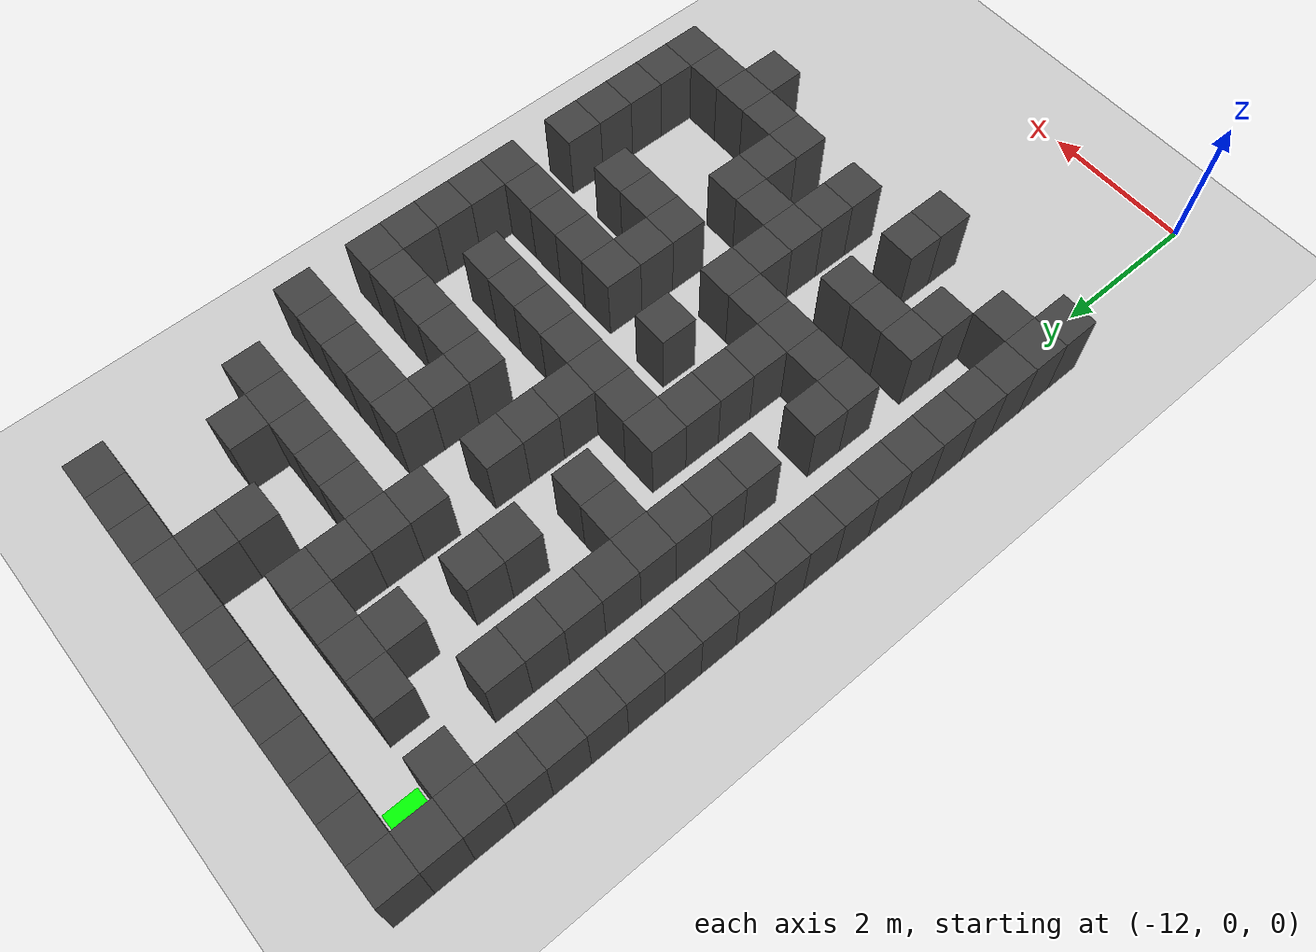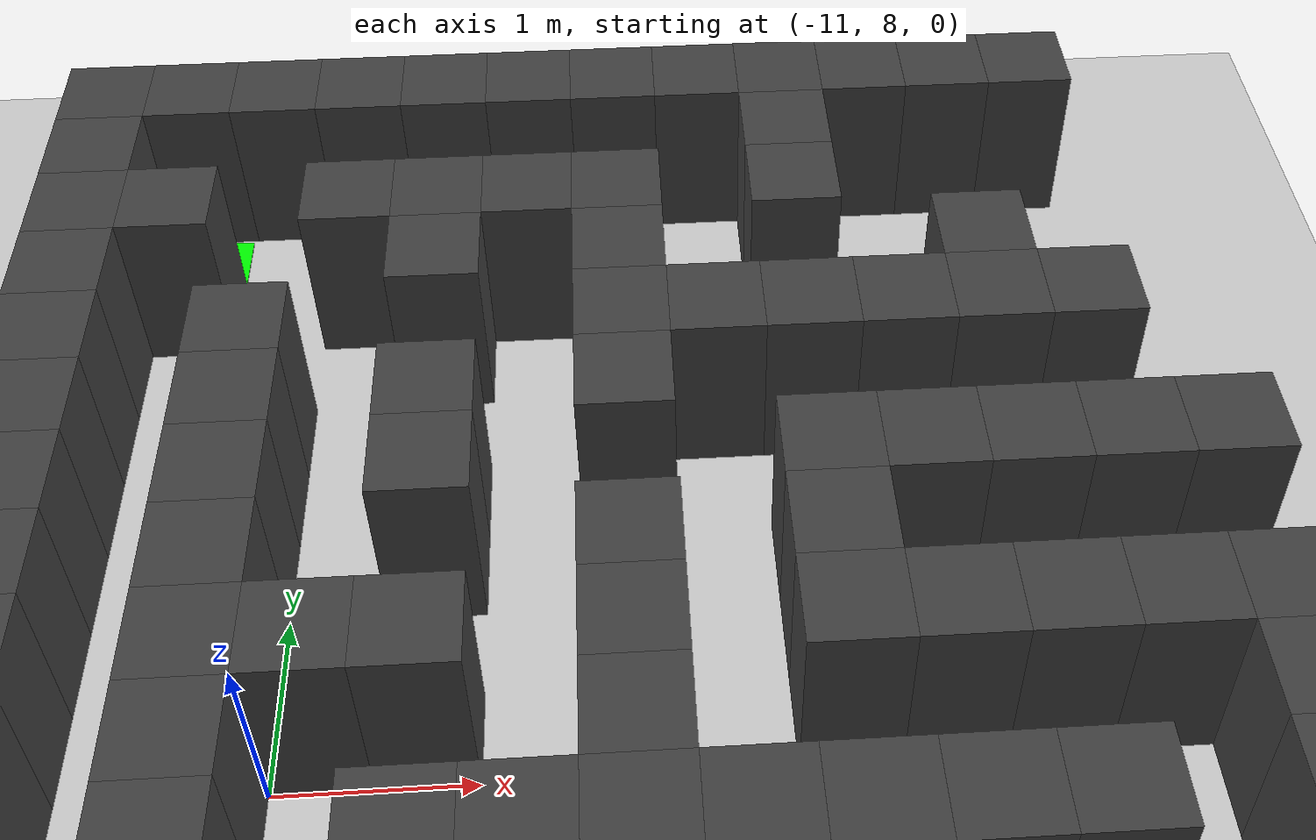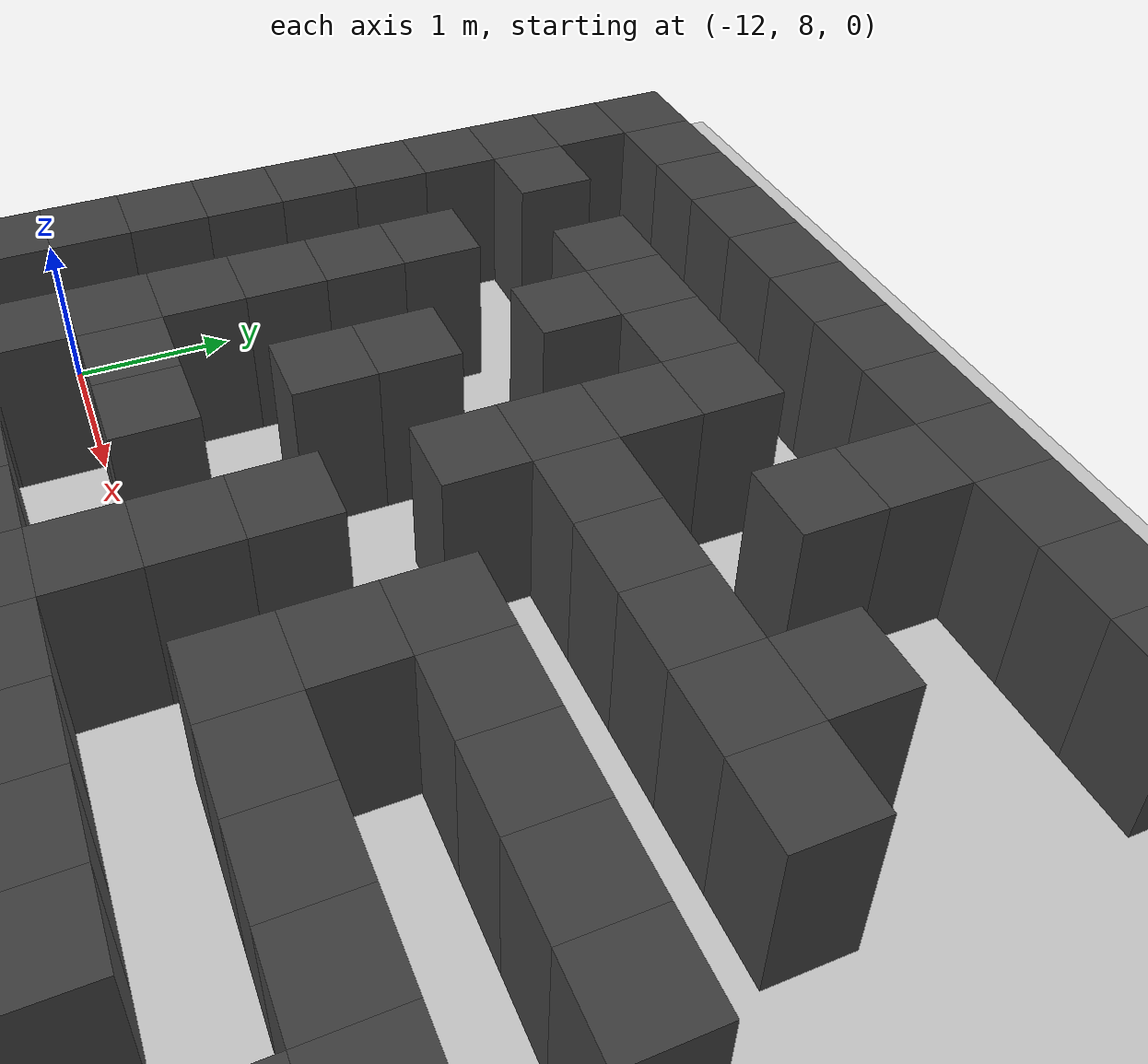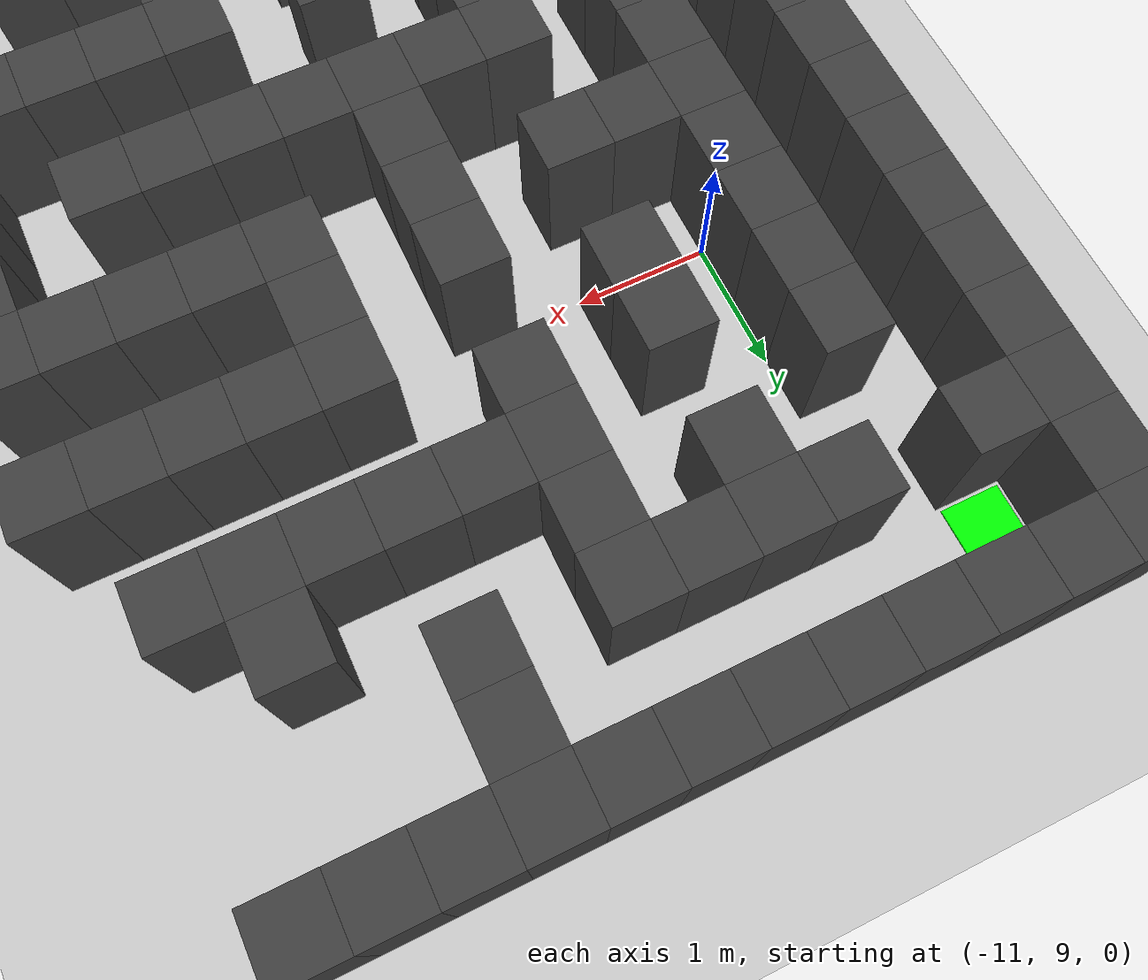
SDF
<sdf version="1.7">
 <world name="map_17663">
  <model name="ground_plane">
   <static>true</static>
   <link name="link">
    <collision name="collision">
     <geometry><plane><normal>0 0 1</normal><size>200 200</size></plane></geometry>
    </collision>
    <visual name="visual">
     <geometry><plane><normal>0 0 1</normal><size>200 200</size></plane></geometry>
     <material><ambient>0.8 0.8 0.8 1</ambient><diffuse>0.8 0.8 0.8 1</diffuse></material>
    </visual>
   </link>
  </model>
  <model name="maze_environment">
   <static>true</static>
   <link name="wall_0">
    <pose>-12.250 12.250 0.500 0 0 0</pose>
    <collision name="col"><geometry><box><size>0.5 0.5 1.0</size></box></geometry></collision>
    <visual name="vis">
     <geometry><box><size>0.5 0.5 1.0</size></box></geometry>
     <material><ambient>0.15 0.15 0.15 1</ambient><diffuse>0.25 0.25 0.25 1</diffuse></material>
    </visual>
   </link>
   <link name="wall_1">
    <pose>-11.750 12.250 0.500 0 0 0</pose>
    <collision name="col"><geometry><box><size>0.5 0.5 1.0</size></box></geometry></collision>
    <visual name="vis">
     <geometry><box><size>0.5 0.5 1.0</size></box></geometry>
     <material><ambient>0.15 0.15 0.15 1</ambient><diffuse>0.25 0.25 0.25 1</diffuse></material>
    </visual>
   </link>
   <link name="wall_2">
    <pose>-11.250 12.250 0.500 0 0 0</pose>
    <collision name="col"><geometry><box><size>0.5 0.5 1.0</size></box></geometry></collision>
    <visual name="vis">
     <geometry><box><size>0.5 0.5 1.0</size></box></geometry>
     <material><ambient>0.15 0.15 0.15 1</ambient><diffuse>0.25 0.25 0.25 1</diffuse></material>
    </visual>
   </link>
   <link name="wall_3">
    <pose>-10.750 12.250 0.500 0 0 0</pose>
    <collision name="col"><geometry><box><size>0.5 0.5 1.0</size></box></geometry></collision>
    <visual name="vis">
     <geometry><box><size>0.5 0.5 1.0</size></box></geometry>
     <material><ambient>0.15 0.15 0.15 1</ambient><diffuse>0.25 0.25 0.25 1</diffuse></material>
    </visual>
   </link>
   <link name="wall_4">
    <pose>-10.250 12.250 0.500 0 0 0</pose>
    <collision name="col"><geometry><box><size>0.5 0.5 1.0</size></box></geometry></collision>
    <visual name="vis">
     <geometry><box><size>0.5 0.5 1.0</size></box></geometry>
     <material><ambient>0.15 0.15 0.15 1</ambient><diffuse>0.25 0.25 0.25 1</diffuse></material>
    </visual>
   </link>
   <link name="wall_5">
    <pose>-9.750 12.250 0.500 0 0 0</pose>
    <collision name="col"><geometry><box><size>0.5 0.5 1.0</size></box></geometry></collision>
    <visual name="vis">
     <geometry><box><size>0.5 0.5 1.0</size></box></geometry>
     <material><ambient>0.15 0.15 0.15 1</ambient><diffuse>0.25 0.25 0.25 1</diffuse></material>
    </visual>
   </link>
   <link name="wall_6">
    <pose>-9.250 12.250 0.500 0 0 0</pose>
    <collision name="col"><geometry><box><size>0.5 0.5 1.0</size></box></geometry></collision>
    <visual name="vis">
     <geometry><box><size>0.5 0.5 1.0</size></box></geometry>
     <material><ambient>0.15 0.15 0.15 1</ambient><diffuse>0.25 0.25 0.25 1</diffuse></material>
    </visual>
   </link>
   <link name="wall_7">
    <pose>-8.750 12.250 0.500 0 0 0</pose>
    <collision name="col"><geometry><box><size>0.5 0.5 1.0</size></box></geometry></collision>
    <visual name="vis">
     <geometry><box><size>0.5 0.5 1.0</size></box></geometry>
     <material><ambient>0.15 0.15 0.15 1</ambient><diffuse>0.25 0.25 0.25 1</diffuse></material>
    </visual>
   </link>
   <link name="wall_8">
    <pose>-8.250 12.250 0.500 0 0 0</pose>
    <collision name="col"><geometry><box><size>0.5 0.5 1.0</size></box></geometry></collision>
    <visual name="vis">
     <geometry><box><size>0.5 0.5 1.0</size></box></geometry>
     <material><ambient>0.15 0.15 0.15 1</ambient><diffuse>0.25 0.25 0.25 1</diffuse></material>
    </visual>
   </link>
   <link name="wall_9">
    <pose>-7.750 12.250 0.500 0 0 0</pose>
    <collision name="col"><geometry><box><size>0.5 0.5 1.0</size></box></geometry></collision>
    <visual name="vis">
     <geometry><box><size>0.5 0.5 1.0</size></box></geometry>
     <material><ambient>0.15 0.15 0.15 1</ambient><diffuse>0.25 0.25 0.25 1</diffuse></material>
    </visual>
   </link>
   <link name="wall_10">
    <pose>-7.250 12.250 0.500 0 0 0</pose>
    <collision name="col"><geometry><box><size>0.5 0.5 1.0</size></box></geometry></collision>
    <visual name="vis">
     <geometry><box><size>0.5 0.5 1.0</size></box></geometry>
     <material><ambient>0.15 0.15 0.15 1</ambient><diffuse>0.25 0.25 0.25 1</diffuse></material>
    </visual>
   </link>
   <link name="wall_11">
    <pose>-6.750 12.250 0.500 0 0 0</pose>
    <collision name="col"><geometry><box><size>0.5 0.5 1.0</size></box></geometry></collision>
    <visual name="vis">
     <geometry><box><size>0.5 0.5 1.0</size></box></geometry>
     <material><ambient>0.15 0.15 0.15 1</ambient><diffuse>0.25 0.25 0.25 1</diffuse></material>
    </visual>
   </link>
   <link name="wall_50">
    <pose>-12.250 11.750 0.500 0 0 0</pose>
    <collision name="col"><geometry><box><size>0.5 0.5 1.0</size></box></geometry></collision>
    <visual name="vis">
     <geometry><box><size>0.5 0.5 1.0</size></box></geometry>
     <material><ambient>0.15 0.15 0.15 1</ambient><diffuse>0.25 0.25 0.25 1</diffuse></material>
    </visual>
   </link>
   <link name="wall_51">
    <pose>-8.250 11.750 0.500 0 0 0</pose>
    <collision name="col"><geometry><box><size>0.5 0.5 1.0</size></box></geometry></collision>
    <visual name="vis">
     <geometry><box><size>0.5 0.5 1.0</size></box></geometry>
     <material><ambient>0.15 0.15 0.15 1</ambient><diffuse>0.25 0.25 0.25 1</diffuse></material>
    </visual>
   </link>
   <link name="wall_59">
    <pose>-12.250 11.250 0.500 0 0 0</pose>
    <collision name="col"><geometry><box><size>0.5 0.5 1.0</size></box></geometry></collision>
    <visual name="vis">
     <geometry><box><size>0.5 0.5 1.0</size></box></geometry>
     <material><ambient>0.15 0.15 0.15 1</ambient><diffuse>0.25 0.25 0.25 1</diffuse></material>
    </visual>
   </link>
   <link name="wall_60">
    <pose>-11.750 11.250 0.500 0 0 0</pose>
    <collision name="col"><geometry><box><size>0.5 0.5 1.0</size></box></geometry></collision>
    <visual name="vis">
     <geometry><box><size>0.5 0.5 1.0</size></box></geometry>
     <material><ambient>0.15 0.15 0.15 1</ambient><diffuse>0.25 0.25 0.25 1</diffuse></material>
    </visual>
   </link>
   <link name="wall_61">
    <pose>-10.750 11.250 0.500 0 0 0</pose>
    <collision name="col"><geometry><box><size>0.5 0.5 1.0</size></box></geometry></collision>
    <visual name="vis">
     <geometry><box><size>0.5 0.5 1.0</size></box></geometry>
     <material><ambient>0.15 0.15 0.15 1</ambient><diffuse>0.25 0.25 0.25 1</diffuse></material>
    </visual>
   </link>
   <link name="wall_62">
    <pose>-10.250 11.250 0.500 0 0 0</pose>
    <collision name="col"><geometry><box><size>0.5 0.5 1.0</size></box></geometry></collision>
    <visual name="vis">
     <geometry><box><size>0.5 0.5 1.0</size></box></geometry>
     <material><ambient>0.15 0.15 0.15 1</ambient><diffuse>0.25 0.25 0.25 1</diffuse></material>
    </visual>
   </link>
   <link name="wall_63">
    <pose>-9.750 11.250 0.500 0 0 0</pose>
    <collision name="col"><geometry><box><size>0.5 0.5 1.0</size></box></geometry></collision>
    <visual name="vis">
     <geometry><box><size>0.5 0.5 1.0</size></box></geometry>
     <material><ambient>0.15 0.15 0.15 1</ambient><diffuse>0.25 0.25 0.25 1</diffuse></material>
    </visual>
   </link>
   <link name="wall_64">
    <pose>-9.250 11.250 0.500 0 0 0</pose>
    <collision name="col"><geometry><box><size>0.5 0.5 1.0</size></box></geometry></collision>
    <visual name="vis">
     <geometry><box><size>0.5 0.5 1.0</size></box></geometry>
     <material><ambient>0.15 0.15 0.15 1</ambient><diffuse>0.25 0.25 0.25 1</diffuse></material>
    </visual>
   </link>
   <link name="wall_65">
    <pose>-8.250 11.250 0.500 0 0 0</pose>
    <collision name="col"><geometry><box><size>0.5 0.5 1.0</size></box></geometry></collision>
    <visual name="vis">
     <geometry><box><size>0.5 0.5 1.0</size></box></geometry>
     <material><ambient>0.15 0.15 0.15 1</ambient><diffuse>0.25 0.25 0.25 1</diffuse></material>
    </visual>
   </link>
   <link name="wall_91">
    <pose>-12.250 10.750 0.500 0 0 0</pose>
    <collision name="col"><geometry><box><size>0.5 0.5 1.0</size></box></geometry></collision>
    <visual name="vis">
     <geometry><box><size>0.5 0.5 1.0</size></box></geometry>
     <material><ambient>0.15 0.15 0.15 1</ambient><diffuse>0.25 0.25 0.25 1</diffuse></material>
    </visual>
   </link>
   <link name="wall_92">
    <pose>-10.250 10.750 0.500 0 0 0</pose>
    <collision name="col"><geometry><box><size>0.5 0.5 1.0</size></box></geometry></collision>
    <visual name="vis">
     <geometry><box><size>0.5 0.5 1.0</size></box></geometry>
     <material><ambient>0.15 0.15 0.15 1</ambient><diffuse>0.25 0.25 0.25 1</diffuse></material>
    </visual>
   </link>
   <link name="wall_93">
    <pose>-9.250 10.750 0.500 0 0 0</pose>
    <collision name="col"><geometry><box><size>0.5 0.5 1.0</size></box></geometry></collision>
    <visual name="vis">
     <geometry><box><size>0.5 0.5 1.0</size></box></geometry>
     <material><ambient>0.15 0.15 0.15 1</ambient><diffuse>0.25 0.25 0.25 1</diffuse></material>
    </visual>
   </link>
   <link name="wall_94">
    <pose>-7.250 10.750 0.500 0 0 0</pose>
    <collision name="col"><geometry><box><size>0.5 0.5 1.0</size></box></geometry></collision>
    <visual name="vis">
     <geometry><box><size>0.5 0.5 1.0</size></box></geometry>
     <material><ambient>0.15 0.15 0.15 1</ambient><diffuse>0.25 0.25 0.25 1</diffuse></material>
    </visual>
   </link>
   <link name="wall_105">
    <pose>-12.250 10.250 0.500 0 0 0</pose>
    <collision name="col"><geometry><box><size>0.5 0.5 1.0</size></box></geometry></collision>
    <visual name="vis">
     <geometry><box><size>0.5 0.5 1.0</size></box></geometry>
     <material><ambient>0.15 0.15 0.15 1</ambient><diffuse>0.25 0.25 0.25 1</diffuse></material>
    </visual>
   </link>
   <link name="wall_106">
    <pose>-11.250 10.250 0.500 0 0 0</pose>
    <collision name="col"><geometry><box><size>0.5 0.5 1.0</size></box></geometry></collision>
    <visual name="vis">
     <geometry><box><size>0.5 0.5 1.0</size></box></geometry>
     <material><ambient>0.15 0.15 0.15 1</ambient><diffuse>0.25 0.25 0.25 1</diffuse></material>
    </visual>
   </link>
   <link name="wall_107">
    <pose>-9.250 10.250 0.500 0 0 0</pose>
    <collision name="col"><geometry><box><size>0.5 0.5 1.0</size></box></geometry></collision>
    <visual name="vis">
     <geometry><box><size>0.5 0.5 1.0</size></box></geometry>
     <material><ambient>0.15 0.15 0.15 1</ambient><diffuse>0.25 0.25 0.25 1</diffuse></material>
    </visual>
   </link>
   <link name="wall_108">
    <pose>-8.750 10.250 0.500 0 0 0</pose>
    <collision name="col"><geometry><box><size>0.5 0.5 1.0</size></box></geometry></collision>
    <visual name="vis">
     <geometry><box><size>0.5 0.5 1.0</size></box></geometry>
     <material><ambient>0.15 0.15 0.15 1</ambient><diffuse>0.25 0.25 0.25 1</diffuse></material>
    </visual>
   </link>
   <link name="wall_109">
    <pose>-8.250 10.250 0.500 0 0 0</pose>
    <collision name="col"><geometry><box><size>0.5 0.5 1.0</size></box></geometry></collision>
    <visual name="vis">
     <geometry><box><size>0.5 0.5 1.0</size></box></geometry>
     <material><ambient>0.15 0.15 0.15 1</ambient><diffuse>0.25 0.25 0.25 1</diffuse></material>
    </visual>
   </link>
   <link name="wall_110">
    <pose>-7.750 10.250 0.500 0 0 0</pose>
    <collision name="col"><geometry><box><size>0.5 0.5 1.0</size></box></geometry></collision>
    <visual name="vis">
     <geometry><box><size>0.5 0.5 1.0</size></box></geometry>
     <material><ambient>0.15 0.15 0.15 1</ambient><diffuse>0.25 0.25 0.25 1</diffuse></material>
    </visual>
   </link>
   <link name="wall_111">
    <pose>-7.250 10.250 0.500 0 0 0</pose>
    <collision name="col"><geometry><box><size>0.5 0.5 1.0</size></box></geometry></collision>
    <visual name="vis">
     <geometry><box><size>0.5 0.5 1.0</size></box></geometry>
     <material><ambient>0.15 0.15 0.15 1</ambient><diffuse>0.25 0.25 0.25 1</diffuse></material>
    </visual>
   </link>
   <link name="wall_112">
    <pose>-6.750 10.250 0.500 0 0 0</pose>
    <collision name="col"><geometry><box><size>0.5 0.5 1.0</size></box></geometry></collision>
    <visual name="vis">
     <geometry><box><size>0.5 0.5 1.0</size></box></geometry>
     <material><ambient>0.15 0.15 0.15 1</ambient><diffuse>0.25 0.25 0.25 1</diffuse></material>
    </visual>
   </link>
   <link name="wall_139">
    <pose>-12.250 9.750 0.500 0 0 0</pose>
    <collision name="col"><geometry><box><size>0.5 0.5 1.0</size></box></geometry></collision>
    <visual name="vis">
     <geometry><box><size>0.5 0.5 1.0</size></box></geometry>
     <material><ambient>0.15 0.15 0.15 1</ambient><diffuse>0.25 0.25 0.25 1</diffuse></material>
    </visual>
   </link>
   <link name="wall_140">
    <pose>-11.250 9.750 0.500 0 0 0</pose>
    <collision name="col"><geometry><box><size>0.5 0.5 1.0</size></box></geometry></collision>
    <visual name="vis">
     <geometry><box><size>0.5 0.5 1.0</size></box></geometry>
     <material><ambient>0.15 0.15 0.15 1</ambient><diffuse>0.25 0.25 0.25 1</diffuse></material>
    </visual>
   </link>
   <link name="wall_141">
    <pose>-10.250 9.750 0.500 0 0 0</pose>
    <collision name="col"><geometry><box><size>0.5 0.5 1.0</size></box></geometry></collision>
    <visual name="vis">
     <geometry><box><size>0.5 0.5 1.0</size></box></geometry>
     <material><ambient>0.15 0.15 0.15 1</ambient><diffuse>0.25 0.25 0.25 1</diffuse></material>
    </visual>
   </link>
   <link name="wall_142">
    <pose>-9.250 9.750 0.500 0 0 0</pose>
    <collision name="col"><geometry><box><size>0.5 0.5 1.0</size></box></geometry></collision>
    <visual name="vis">
     <geometry><box><size>0.5 0.5 1.0</size></box></geometry>
     <material><ambient>0.15 0.15 0.15 1</ambient><diffuse>0.25 0.25 0.25 1</diffuse></material>
    </visual>
   </link>
   <link name="wall_155">
    <pose>-12.250 9.250 0.500 0 0 0</pose>
    <collision name="col"><geometry><box><size>0.5 0.5 1.0</size></box></geometry></collision>
    <visual name="vis">
     <geometry><box><size>0.5 0.5 1.0</size></box></geometry>
     <material><ambient>0.15 0.15 0.15 1</ambient><diffuse>0.25 0.25 0.25 1</diffuse></material>
    </visual>
   </link>
   <link name="wall_156">
    <pose>-11.250 9.250 0.500 0 0 0</pose>
    <collision name="col"><geometry><box><size>0.5 0.5 1.0</size></box></geometry></collision>
    <visual name="vis">
     <geometry><box><size>0.5 0.5 1.0</size></box></geometry>
     <material><ambient>0.15 0.15 0.15 1</ambient><diffuse>0.25 0.25 0.25 1</diffuse></material>
    </visual>
   </link>
   <link name="wall_157">
    <pose>-10.250 9.250 0.500 0 0 0</pose>
    <collision name="col"><geometry><box><size>0.5 0.5 1.0</size></box></geometry></collision>
    <visual name="vis">
     <geometry><box><size>0.5 0.5 1.0</size></box></geometry>
     <material><ambient>0.15 0.15 0.15 1</ambient><diffuse>0.25 0.25 0.25 1</diffuse></material>
    </visual>
   </link>
   <link name="wall_158">
    <pose>-8.250 9.250 0.500 0 0 0</pose>
    <collision name="col"><geometry><box><size>0.5 0.5 1.0</size></box></geometry></collision>
    <visual name="vis">
     <geometry><box><size>0.5 0.5 1.0</size></box></geometry>
     <material><ambient>0.15 0.15 0.15 1</ambient><diffuse>0.25 0.25 0.25 1</diffuse></material>
    </visual>
   </link>
   <link name="wall_159">
    <pose>-7.750 9.250 0.500 0 0 0</pose>
    <collision name="col"><geometry><box><size>0.5 0.5 1.0</size></box></geometry></collision>
    <visual name="vis">
     <geometry><box><size>0.5 0.5 1.0</size></box></geometry>
     <material><ambient>0.15 0.15 0.15 1</ambient><diffuse>0.25 0.25 0.25 1</diffuse></material>
    </visual>
   </link>
   <link name="wall_160">
    <pose>-7.250 9.250 0.500 0 0 0</pose>
    <collision name="col"><geometry><box><size>0.5 0.5 1.0</size></box></geometry></collision>
    <visual name="vis">
     <geometry><box><size>0.5 0.5 1.0</size></box></geometry>
     <material><ambient>0.15 0.15 0.15 1</ambient><diffuse>0.25 0.25 0.25 1</diffuse></material>
    </visual>
   </link>
   <link name="wall_161">
    <pose>-6.750 9.250 0.500 0 0 0</pose>
    <collision name="col"><geometry><box><size>0.5 0.5 1.0</size></box></geometry></collision>
    <visual name="vis">
     <geometry><box><size>0.5 0.5 1.0</size></box></geometry>
     <material><ambient>0.15 0.15 0.15 1</ambient><diffuse>0.25 0.25 0.25 1</diffuse></material>
    </visual>
   </link>
   <link name="wall_162">
    <pose>-6.250 9.250 0.500 0 0 0</pose>
    <collision name="col"><geometry><box><size>0.5 0.5 1.0</size></box></geometry></collision>
    <visual name="vis">
     <geometry><box><size>0.5 0.5 1.0</size></box></geometry>
     <material><ambient>0.15 0.15 0.15 1</ambient><diffuse>0.25 0.25 0.25 1</diffuse></material>
    </visual>
   </link>
   <link name="wall_188">
    <pose>-12.250 8.750 0.500 0 0 0</pose>
    <collision name="col"><geometry><box><size>0.5 0.5 1.0</size></box></geometry></collision>
    <visual name="vis">
     <geometry><box><size>0.5 0.5 1.0</size></box></geometry>
     <material><ambient>0.15 0.15 0.15 1</ambient><diffuse>0.25 0.25 0.25 1</diffuse></material>
    </visual>
   </link>
   <link name="wall_189">
    <pose>-11.250 8.750 0.500 0 0 0</pose>
    <collision name="col"><geometry><box><size>0.5 0.5 1.0</size></box></geometry></collision>
    <visual name="vis">
     <geometry><box><size>0.5 0.5 1.0</size></box></geometry>
     <material><ambient>0.15 0.15 0.15 1</ambient><diffuse>0.25 0.25 0.25 1</diffuse></material>
    </visual>
   </link>
   <link name="wall_190">
    <pose>-9.250 8.750 0.500 0 0 0</pose>
    <collision name="col"><geometry><box><size>0.5 0.5 1.0</size></box></geometry></collision>
    <visual name="vis">
     <geometry><box><size>0.5 0.5 1.0</size></box></geometry>
     <material><ambient>0.15 0.15 0.15 1</ambient><diffuse>0.25 0.25 0.25 1</diffuse></material>
    </visual>
   </link>
   <link name="wall_191">
    <pose>-8.250 8.750 0.500 0 0 0</pose>
    <collision name="col"><geometry><box><size>0.5 0.5 1.0</size></box></geometry></collision>
    <visual name="vis">
     <geometry><box><size>0.5 0.5 1.0</size></box></geometry>
     <material><ambient>0.15 0.15 0.15 1</ambient><diffuse>0.25 0.25 0.25 1</diffuse></material>
    </visual>
   </link>
   <link name="wall_203">
    <pose>-12.250 8.250 0.500 0 0 0</pose>
    <collision name="col"><geometry><box><size>0.5 0.5 1.0</size></box></geometry></collision>
    <visual name="vis">
     <geometry><box><size>0.5 0.5 1.0</size></box></geometry>
     <material><ambient>0.15 0.15 0.15 1</ambient><diffuse>0.25 0.25 0.25 1</diffuse></material>
    </visual>
   </link>
   <link name="wall_204">
    <pose>-11.250 8.250 0.500 0 0 0</pose>
    <collision name="col"><geometry><box><size>0.5 0.5 1.0</size></box></geometry></collision>
    <visual name="vis">
     <geometry><box><size>0.5 0.5 1.0</size></box></geometry>
     <material><ambient>0.15 0.15 0.15 1</ambient><diffuse>0.25 0.25 0.25 1</diffuse></material>
    </visual>
   </link>
   <link name="wall_205">
    <pose>-10.750 8.250 0.500 0 0 0</pose>
    <collision name="col"><geometry><box><size>0.5 0.5 1.0</size></box></geometry></collision>
    <visual name="vis">
     <geometry><box><size>0.5 0.5 1.0</size></box></geometry>
     <material><ambient>0.15 0.15 0.15 1</ambient><diffuse>0.25 0.25 0.25 1</diffuse></material>
    </visual>
   </link>
   <link name="wall_206">
    <pose>-10.250 8.250 0.500 0 0 0</pose>
    <collision name="col"><geometry><box><size>0.5 0.5 1.0</size></box></geometry></collision>
    <visual name="vis">
     <geometry><box><size>0.5 0.5 1.0</size></box></geometry>
     <material><ambient>0.15 0.15 0.15 1</ambient><diffuse>0.25 0.25 0.25 1</diffuse></material>
    </visual>
   </link>
   <link name="wall_207">
    <pose>-9.250 8.250 0.500 0 0 0</pose>
    <collision name="col"><geometry><box><size>0.5 0.5 1.0</size></box></geometry></collision>
    <visual name="vis">
     <geometry><box><size>0.5 0.5 1.0</size></box></geometry>
     <material><ambient>0.15 0.15 0.15 1</ambient><diffuse>0.25 0.25 0.25 1</diffuse></material>
    </visual>
   </link>
   <link name="wall_208">
    <pose>-8.250 8.250 0.500 0 0 0</pose>
    <collision name="col"><geometry><box><size>0.5 0.5 1.0</size></box></geometry></collision>
    <visual name="vis">
     <geometry><box><size>0.5 0.5 1.0</size></box></geometry>
     <material><ambient>0.15 0.15 0.15 1</ambient><diffuse>0.25 0.25 0.25 1</diffuse></material>
    </visual>
   </link>
   <link name="wall_209">
    <pose>-7.750 8.250 0.500 0 0 0</pose>
    <collision name="col"><geometry><box><size>0.5 0.5 1.0</size></box></geometry></collision>
    <visual name="vis">
     <geometry><box><size>0.5 0.5 1.0</size></box></geometry>
     <material><ambient>0.15 0.15 0.15 1</ambient><diffuse>0.25 0.25 0.25 1</diffuse></material>
    </visual>
   </link>
   <link name="wall_210">
    <pose>-7.250 8.250 0.500 0 0 0</pose>
    <collision name="col"><geometry><box><size>0.5 0.5 1.0</size></box></geometry></collision>
    <visual name="vis">
     <geometry><box><size>0.5 0.5 1.0</size></box></geometry>
     <material><ambient>0.15 0.15 0.15 1</ambient><diffuse>0.25 0.25 0.25 1</diffuse></material>
    </visual>
   </link>
   <link name="wall_211">
    <pose>-6.750 8.250 0.500 0 0 0</pose>
    <collision name="col"><geometry><box><size>0.5 0.5 1.0</size></box></geometry></collision>
    <visual name="vis">
     <geometry><box><size>0.5 0.5 1.0</size></box></geometry>
     <material><ambient>0.15 0.15 0.15 1</ambient><diffuse>0.25 0.25 0.25 1</diffuse></material>
    </visual>
   </link>
   <link name="wall_212">
    <pose>-6.250 8.250 0.500 0 0 0</pose>
    <collision name="col"><geometry><box><size>0.5 0.5 1.0</size></box></geometry></collision>
    <visual name="vis">
     <geometry><box><size>0.5 0.5 1.0</size></box></geometry>
     <material><ambient>0.15 0.15 0.15 1</ambient><diffuse>0.25 0.25 0.25 1</diffuse></material>
    </visual>
   </link>
   <link name="wall_241">
    <pose>-12.250 7.750 0.500 0 0 0</pose>
    <collision name="col"><geometry><box><size>0.5 0.5 1.0</size></box></geometry></collision>
    <visual name="vis">
     <geometry><box><size>0.5 0.5 1.0</size></box></geometry>
     <material><ambient>0.15 0.15 0.15 1</ambient><diffuse>0.25 0.25 0.25 1</diffuse></material>
    </visual>
   </link>
   <link name="wall_242">
    <pose>-11.250 7.750 0.500 0 0 0</pose>
    <collision name="col"><geometry><box><size>0.5 0.5 1.0</size></box></geometry></collision>
    <visual name="vis">
     <geometry><box><size>0.5 0.5 1.0</size></box></geometry>
     <material><ambient>0.15 0.15 0.15 1</ambient><diffuse>0.25 0.25 0.25 1</diffuse></material>
    </visual>
   </link>
   <link name="wall_243">
    <pose>-9.250 7.750 0.500 0 0 0</pose>
    <collision name="col"><geometry><box><size>0.5 0.5 1.0</size></box></geometry></collision>
    <visual name="vis">
     <geometry><box><size>0.5 0.5 1.0</size></box></geometry>
     <material><ambient>0.15 0.15 0.15 1</ambient><diffuse>0.25 0.25 0.25 1</diffuse></material>
    </visual>
   </link>
   <link name="wall_244">
    <pose>-6.250 7.750 0.500 0 0 0</pose>
    <collision name="col"><geometry><box><size>0.5 0.5 1.0</size></box></geometry></collision>
    <visual name="vis">
     <geometry><box><size>0.5 0.5 1.0</size></box></geometry>
     <material><ambient>0.15 0.15 0.15 1</ambient><diffuse>0.25 0.25 0.25 1</diffuse></material>
    </visual>
   </link>
   <link name="wall_254">
    <pose>-12.250 7.250 0.500 0 0 0</pose>
    <collision name="col"><geometry><box><size>0.5 0.5 1.0</size></box></geometry></collision>
    <visual name="vis">
     <geometry><box><size>0.5 0.5 1.0</size></box></geometry>
     <material><ambient>0.15 0.15 0.15 1</ambient><diffuse>0.25 0.25 0.25 1</diffuse></material>
    </visual>
   </link>
   <link name="wall_255">
    <pose>-11.250 7.250 0.500 0 0 0</pose>
    <collision name="col"><geometry><box><size>0.5 0.5 1.0</size></box></geometry></collision>
    <visual name="vis">
     <geometry><box><size>0.5 0.5 1.0</size></box></geometry>
     <material><ambient>0.15 0.15 0.15 1</ambient><diffuse>0.25 0.25 0.25 1</diffuse></material>
    </visual>
   </link>
   <link name="wall_256">
    <pose>-10.250 7.250 0.500 0 0 0</pose>
    <collision name="col"><geometry><box><size>0.5 0.5 1.0</size></box></geometry></collision>
    <visual name="vis">
     <geometry><box><size>0.5 0.5 1.0</size></box></geometry>
     <material><ambient>0.15 0.15 0.15 1</ambient><diffuse>0.25 0.25 0.25 1</diffuse></material>
    </visual>
   </link>
   <link name="wall_257">
    <pose>-9.750 7.250 0.500 0 0 0</pose>
    <collision name="col"><geometry><box><size>0.5 0.5 1.0</size></box></geometry></collision>
    <visual name="vis">
     <geometry><box><size>0.5 0.5 1.0</size></box></geometry>
     <material><ambient>0.15 0.15 0.15 1</ambient><diffuse>0.25 0.25 0.25 1</diffuse></material>
    </visual>
   </link>
   <link name="wall_258">
    <pose>-9.250 7.250 0.500 0 0 0</pose>
    <collision name="col"><geometry><box><size>0.5 0.5 1.0</size></box></geometry></collision>
    <visual name="vis">
     <geometry><box><size>0.5 0.5 1.0</size></box></geometry>
     <material><ambient>0.15 0.15 0.15 1</ambient><diffuse>0.25 0.25 0.25 1</diffuse></material>
    </visual>
   </link>
   <link name="wall_259">
    <pose>-8.750 7.250 0.500 0 0 0</pose>
    <collision name="col"><geometry><box><size>0.5 0.5 1.0</size></box></geometry></collision>
    <visual name="vis">
     <geometry><box><size>0.5 0.5 1.0</size></box></geometry>
     <material><ambient>0.15 0.15 0.15 1</ambient><diffuse>0.25 0.25 0.25 1</diffuse></material>
    </visual>
   </link>
   <link name="wall_260">
    <pose>-8.250 7.250 0.500 0 0 0</pose>
    <collision name="col"><geometry><box><size>0.5 0.5 1.0</size></box></geometry></collision>
    <visual name="vis">
     <geometry><box><size>0.5 0.5 1.0</size></box></geometry>
     <material><ambient>0.15 0.15 0.15 1</ambient><diffuse>0.25 0.25 0.25 1</diffuse></material>
    </visual>
   </link>
   <link name="wall_261">
    <pose>-7.750 7.250 0.500 0 0 0</pose>
    <collision name="col"><geometry><box><size>0.5 0.5 1.0</size></box></geometry></collision>
    <visual name="vis">
     <geometry><box><size>0.5 0.5 1.0</size></box></geometry>
     <material><ambient>0.15 0.15 0.15 1</ambient><diffuse>0.25 0.25 0.25 1</diffuse></material>
    </visual>
   </link>
   <link name="wall_262">
    <pose>-7.250 7.250 0.500 0 0 0</pose>
    <collision name="col"><geometry><box><size>0.5 0.5 1.0</size></box></geometry></collision>
    <visual name="vis">
     <geometry><box><size>0.5 0.5 1.0</size></box></geometry>
     <material><ambient>0.15 0.15 0.15 1</ambient><diffuse>0.25 0.25 0.25 1</diffuse></material>
    </visual>
   </link>
   <link name="wall_263">
    <pose>-6.250 7.250 0.500 0 0 0</pose>
    <collision name="col"><geometry><box><size>0.5 0.5 1.0</size></box></geometry></collision>
    <visual name="vis">
     <geometry><box><size>0.5 0.5 1.0</size></box></geometry>
     <material><ambient>0.15 0.15 0.15 1</ambient><diffuse>0.25 0.25 0.25 1</diffuse></material>
    </visual>
   </link>
   <link name="wall_288">
    <pose>-12.250 6.750 0.500 0 0 0</pose>
    <collision name="col"><geometry><box><size>0.5 0.5 1.0</size></box></geometry></collision>
    <visual name="vis">
     <geometry><box><size>0.5 0.5 1.0</size></box></geometry>
     <material><ambient>0.15 0.15 0.15 1</ambient><diffuse>0.25 0.25 0.25 1</diffuse></material>
    </visual>
   </link>
   <link name="wall_289">
    <pose>-11.250 6.750 0.500 0 0 0</pose>
    <collision name="col"><geometry><box><size>0.5 0.5 1.0</size></box></geometry></collision>
    <visual name="vis">
     <geometry><box><size>0.5 0.5 1.0</size></box></geometry>
     <material><ambient>0.15 0.15 0.15 1</ambient><diffuse>0.25 0.25 0.25 1</diffuse></material>
    </visual>
   </link>
   <link name="wall_290">
    <pose>-10.250 6.750 0.500 0 0 0</pose>
    <collision name="col"><geometry><box><size>0.5 0.5 1.0</size></box></geometry></collision>
    <visual name="vis">
     <geometry><box><size>0.5 0.5 1.0</size></box></geometry>
     <material><ambient>0.15 0.15 0.15 1</ambient><diffuse>0.25 0.25 0.25 1</diffuse></material>
    </visual>
   </link>
   <link name="wall_291">
    <pose>-6.250 6.750 0.500 0 0 0</pose>
    <collision name="col"><geometry><box><size>0.5 0.5 1.0</size></box></geometry></collision>
    <visual name="vis">
     <geometry><box><size>0.5 0.5 1.0</size></box></geometry>
     <material><ambient>0.15 0.15 0.15 1</ambient><diffuse>0.25 0.25 0.25 1</diffuse></material>
    </visual>
   </link>
   <link name="wall_301">
    <pose>-12.250 6.250 0.500 0 0 0</pose>
    <collision name="col"><geometry><box><size>0.5 0.5 1.0</size></box></geometry></collision>
    <visual name="vis">
     <geometry><box><size>0.5 0.5 1.0</size></box></geometry>
     <material><ambient>0.15 0.15 0.15 1</ambient><diffuse>0.25 0.25 0.25 1</diffuse></material>
    </visual>
   </link>
   <link name="wall_302">
    <pose>-10.250 6.250 0.500 0 0 0</pose>
    <collision name="col"><geometry><box><size>0.5 0.5 1.0</size></box></geometry></collision>
    <visual name="vis">
     <geometry><box><size>0.5 0.5 1.0</size></box></geometry>
     <material><ambient>0.15 0.15 0.15 1</ambient><diffuse>0.25 0.25 0.25 1</diffuse></material>
    </visual>
   </link>
   <link name="wall_303">
    <pose>-9.250 6.250 0.500 0 0 0</pose>
    <collision name="col"><geometry><box><size>0.5 0.5 1.0</size></box></geometry></collision>
    <visual name="vis">
     <geometry><box><size>0.5 0.5 1.0</size></box></geometry>
     <material><ambient>0.15 0.15 0.15 1</ambient><diffuse>0.25 0.25 0.25 1</diffuse></material>
    </visual>
   </link>
   <link name="wall_304">
    <pose>-8.250 6.250 0.500 0 0 0</pose>
    <collision name="col"><geometry><box><size>0.5 0.5 1.0</size></box></geometry></collision>
    <visual name="vis">
     <geometry><box><size>0.5 0.5 1.0</size></box></geometry>
     <material><ambient>0.15 0.15 0.15 1</ambient><diffuse>0.25 0.25 0.25 1</diffuse></material>
    </visual>
   </link>
   <link name="wall_305">
    <pose>-7.750 6.250 0.500 0 0 0</pose>
    <collision name="col"><geometry><box><size>0.5 0.5 1.0</size></box></geometry></collision>
    <visual name="vis">
     <geometry><box><size>0.5 0.5 1.0</size></box></geometry>
     <material><ambient>0.15 0.15 0.15 1</ambient><diffuse>0.25 0.25 0.25 1</diffuse></material>
    </visual>
   </link>
   <link name="wall_306">
    <pose>-7.250 6.250 0.500 0 0 0</pose>
    <collision name="col"><geometry><box><size>0.5 0.5 1.0</size></box></geometry></collision>
    <visual name="vis">
     <geometry><box><size>0.5 0.5 1.0</size></box></geometry>
     <material><ambient>0.15 0.15 0.15 1</ambient><diffuse>0.25 0.25 0.25 1</diffuse></material>
    </visual>
   </link>
   <link name="wall_307">
    <pose>-6.750 6.250 0.500 0 0 0</pose>
    <collision name="col"><geometry><box><size>0.5 0.5 1.0</size></box></geometry></collision>
    <visual name="vis">
     <geometry><box><size>0.5 0.5 1.0</size></box></geometry>
     <material><ambient>0.15 0.15 0.15 1</ambient><diffuse>0.25 0.25 0.25 1</diffuse></material>
    </visual>
   </link>
   <link name="wall_308">
    <pose>-6.250 6.250 0.500 0 0 0</pose>
    <collision name="col"><geometry><box><size>0.5 0.5 1.0</size></box></geometry></collision>
    <visual name="vis">
     <geometry><box><size>0.5 0.5 1.0</size></box></geometry>
     <material><ambient>0.15 0.15 0.15 1</ambient><diffuse>0.25 0.25 0.25 1</diffuse></material>
    </visual>
   </link>
   <link name="wall_331">
    <pose>-12.250 5.750 0.500 0 0 0</pose>
    <collision name="col"><geometry><box><size>0.5 0.5 1.0</size></box></geometry></collision>
    <visual name="vis">
     <geometry><box><size>0.5 0.5 1.0</size></box></geometry>
     <material><ambient>0.15 0.15 0.15 1</ambient><diffuse>0.25 0.25 0.25 1</diffuse></material>
    </visual>
   </link>
   <link name="wall_332">
    <pose>-11.250 5.750 0.500 0 0 0</pose>
    <collision name="col"><geometry><box><size>0.5 0.5 1.0</size></box></geometry></collision>
    <visual name="vis">
     <geometry><box><size>0.5 0.5 1.0</size></box></geometry>
     <material><ambient>0.15 0.15 0.15 1</ambient><diffuse>0.25 0.25 0.25 1</diffuse></material>
    </visual>
   </link>
   <link name="wall_333">
    <pose>-10.250 5.750 0.500 0 0 0</pose>
    <collision name="col"><geometry><box><size>0.5 0.5 1.0</size></box></geometry></collision>
    <visual name="vis">
     <geometry><box><size>0.5 0.5 1.0</size></box></geometry>
     <material><ambient>0.15 0.15 0.15 1</ambient><diffuse>0.25 0.25 0.25 1</diffuse></material>
    </visual>
   </link>
   <link name="wall_334">
    <pose>-8.250 5.750 0.500 0 0 0</pose>
    <collision name="col"><geometry><box><size>0.5 0.5 1.0</size></box></geometry></collision>
    <visual name="vis">
     <geometry><box><size>0.5 0.5 1.0</size></box></geometry>
     <material><ambient>0.15 0.15 0.15 1</ambient><diffuse>0.25 0.25 0.25 1</diffuse></material>
    </visual>
   </link>
   <link name="wall_348">
    <pose>-12.250 5.250 0.500 0 0 0</pose>
    <collision name="col"><geometry><box><size>0.5 0.5 1.0</size></box></geometry></collision>
    <visual name="vis">
     <geometry><box><size>0.5 0.5 1.0</size></box></geometry>
     <material><ambient>0.15 0.15 0.15 1</ambient><diffuse>0.25 0.25 0.25 1</diffuse></material>
    </visual>
   </link>
   <link name="wall_349">
    <pose>-11.250 5.250 0.500 0 0 0</pose>
    <collision name="col"><geometry><box><size>0.5 0.5 1.0</size></box></geometry></collision>
    <visual name="vis">
     <geometry><box><size>0.5 0.5 1.0</size></box></geometry>
     <material><ambient>0.15 0.15 0.15 1</ambient><diffuse>0.25 0.25 0.25 1</diffuse></material>
    </visual>
   </link>
   <link name="wall_350">
    <pose>-10.750 5.250 0.500 0 0 0</pose>
    <collision name="col"><geometry><box><size>0.5 0.5 1.0</size></box></geometry></collision>
    <visual name="vis">
     <geometry><box><size>0.5 0.5 1.0</size></box></geometry>
     <material><ambient>0.15 0.15 0.15 1</ambient><diffuse>0.25 0.25 0.25 1</diffuse></material>
    </visual>
   </link>
   <link name="wall_351">
    <pose>-10.250 5.250 0.500 0 0 0</pose>
    <collision name="col"><geometry><box><size>0.5 0.5 1.0</size></box></geometry></collision>
    <visual name="vis">
     <geometry><box><size>0.5 0.5 1.0</size></box></geometry>
     <material><ambient>0.15 0.15 0.15 1</ambient><diffuse>0.25 0.25 0.25 1</diffuse></material>
    </visual>
   </link>
   <link name="wall_352">
    <pose>-9.750 5.250 0.500 0 0 0</pose>
    <collision name="col"><geometry><box><size>0.5 0.5 1.0</size></box></geometry></collision>
    <visual name="vis">
     <geometry><box><size>0.5 0.5 1.0</size></box></geometry>
     <material><ambient>0.15 0.15 0.15 1</ambient><diffuse>0.25 0.25 0.25 1</diffuse></material>
    </visual>
   </link>
   <link name="wall_353">
    <pose>-9.250 5.250 0.500 0 0 0</pose>
    <collision name="col"><geometry><box><size>0.5 0.5 1.0</size></box></geometry></collision>
    <visual name="vis">
     <geometry><box><size>0.5 0.5 1.0</size></box></geometry>
     <material><ambient>0.15 0.15 0.15 1</ambient><diffuse>0.25 0.25 0.25 1</diffuse></material>
    </visual>
   </link>
   <link name="wall_354">
    <pose>-8.250 5.250 0.500 0 0 0</pose>
    <collision name="col"><geometry><box><size>0.5 0.5 1.0</size></box></geometry></collision>
    <visual name="vis">
     <geometry><box><size>0.5 0.5 1.0</size></box></geometry>
     <material><ambient>0.15 0.15 0.15 1</ambient><diffuse>0.25 0.25 0.25 1</diffuse></material>
    </visual>
   </link>
   <link name="wall_355">
    <pose>-7.750 5.250 0.500 0 0 0</pose>
    <collision name="col"><geometry><box><size>0.5 0.5 1.0</size></box></geometry></collision>
    <visual name="vis">
     <geometry><box><size>0.5 0.5 1.0</size></box></geometry>
     <material><ambient>0.15 0.15 0.15 1</ambient><diffuse>0.25 0.25 0.25 1</diffuse></material>
    </visual>
   </link>
   <link name="wall_356">
    <pose>-7.250 5.250 0.500 0 0 0</pose>
    <collision name="col"><geometry><box><size>0.5 0.5 1.0</size></box></geometry></collision>
    <visual name="vis">
     <geometry><box><size>0.5 0.5 1.0</size></box></geometry>
     <material><ambient>0.15 0.15 0.15 1</ambient><diffuse>0.25 0.25 0.25 1</diffuse></material>
    </visual>
   </link>
   <link name="wall_357">
    <pose>-6.250 5.250 0.500 0 0 0</pose>
    <collision name="col"><geometry><box><size>0.5 0.5 1.0</size></box></geometry></collision>
    <visual name="vis">
     <geometry><box><size>0.5 0.5 1.0</size></box></geometry>
     <material><ambient>0.15 0.15 0.15 1</ambient><diffuse>0.25 0.25 0.25 1</diffuse></material>
    </visual>
   </link>
   <link name="wall_385">
    <pose>-12.250 4.750 0.500 0 0 0</pose>
    <collision name="col"><geometry><box><size>0.5 0.5 1.0</size></box></geometry></collision>
    <visual name="vis">
     <geometry><box><size>0.5 0.5 1.0</size></box></geometry>
     <material><ambient>0.15 0.15 0.15 1</ambient><diffuse>0.25 0.25 0.25 1</diffuse></material>
    </visual>
   </link>
   <link name="wall_386">
    <pose>-9.250 4.750 0.500 0 0 0</pose>
    <collision name="col"><geometry><box><size>0.5 0.5 1.0</size></box></geometry></collision>
    <visual name="vis">
     <geometry><box><size>0.5 0.5 1.0</size></box></geometry>
     <material><ambient>0.15 0.15 0.15 1</ambient><diffuse>0.25 0.25 0.25 1</diffuse></material>
    </visual>
   </link>
   <link name="wall_387">
    <pose>-6.250 4.750 0.500 0 0 0</pose>
    <collision name="col"><geometry><box><size>0.5 0.5 1.0</size></box></geometry></collision>
    <visual name="vis">
     <geometry><box><size>0.5 0.5 1.0</size></box></geometry>
     <material><ambient>0.15 0.15 0.15 1</ambient><diffuse>0.25 0.25 0.25 1</diffuse></material>
    </visual>
   </link>
   <link name="wall_398">
    <pose>-12.250 4.250 0.500 0 0 0</pose>
    <collision name="col"><geometry><box><size>0.5 0.5 1.0</size></box></geometry></collision>
    <visual name="vis">
     <geometry><box><size>0.5 0.5 1.0</size></box></geometry>
     <material><ambient>0.15 0.15 0.15 1</ambient><diffuse>0.25 0.25 0.25 1</diffuse></material>
    </visual>
   </link>
   <link name="wall_399">
    <pose>-11.250 4.250 0.500 0 0 0</pose>
    <collision name="col"><geometry><box><size>0.5 0.5 1.0</size></box></geometry></collision>
    <visual name="vis">
     <geometry><box><size>0.5 0.5 1.0</size></box></geometry>
     <material><ambient>0.15 0.15 0.15 1</ambient><diffuse>0.25 0.25 0.25 1</diffuse></material>
    </visual>
   </link>
   <link name="wall_400">
    <pose>-10.750 4.250 0.500 0 0 0</pose>
    <collision name="col"><geometry><box><size>0.5 0.5 1.0</size></box></geometry></collision>
    <visual name="vis">
     <geometry><box><size>0.5 0.5 1.0</size></box></geometry>
     <material><ambient>0.15 0.15 0.15 1</ambient><diffuse>0.25 0.25 0.25 1</diffuse></material>
    </visual>
   </link>
   <link name="wall_401">
    <pose>-10.250 4.250 0.500 0 0 0</pose>
    <collision name="col"><geometry><box><size>0.5 0.5 1.0</size></box></geometry></collision>
    <visual name="vis">
     <geometry><box><size>0.5 0.5 1.0</size></box></geometry>
     <material><ambient>0.15 0.15 0.15 1</ambient><diffuse>0.25 0.25 0.25 1</diffuse></material>
    </visual>
   </link>
   <link name="wall_402">
    <pose>-9.250 4.250 0.500 0 0 0</pose>
    <collision name="col"><geometry><box><size>0.5 0.5 1.0</size></box></geometry></collision>
    <visual name="vis">
     <geometry><box><size>0.5 0.5 1.0</size></box></geometry>
     <material><ambient>0.15 0.15 0.15 1</ambient><diffuse>0.25 0.25 0.25 1</diffuse></material>
    </visual>
   </link>
   <link name="wall_403">
    <pose>-8.750 4.250 0.500 0 0 0</pose>
    <collision name="col"><geometry><box><size>0.5 0.5 1.0</size></box></geometry></collision>
    <visual name="vis">
     <geometry><box><size>0.5 0.5 1.0</size></box></geometry>
     <material><ambient>0.15 0.15 0.15 1</ambient><diffuse>0.25 0.25 0.25 1</diffuse></material>
    </visual>
   </link>
   <link name="wall_404">
    <pose>-8.250 4.250 0.500 0 0 0</pose>
    <collision name="col"><geometry><box><size>0.5 0.5 1.0</size></box></geometry></collision>
    <visual name="vis">
     <geometry><box><size>0.5 0.5 1.0</size></box></geometry>
     <material><ambient>0.15 0.15 0.15 1</ambient><diffuse>0.25 0.25 0.25 1</diffuse></material>
    </visual>
   </link>
   <link name="wall_405">
    <pose>-6.250 4.250 0.500 0 0 0</pose>
    <collision name="col"><geometry><box><size>0.5 0.5 1.0</size></box></geometry></collision>
    <visual name="vis">
     <geometry><box><size>0.5 0.5 1.0</size></box></geometry>
     <material><ambient>0.15 0.15 0.15 1</ambient><diffuse>0.25 0.25 0.25 1</diffuse></material>
    </visual>
   </link>
   <link name="wall_432">
    <pose>-12.250 3.750 0.500 0 0 0</pose>
    <collision name="col"><geometry><box><size>0.5 0.5 1.0</size></box></geometry></collision>
    <visual name="vis">
     <geometry><box><size>0.5 0.5 1.0</size></box></geometry>
     <material><ambient>0.15 0.15 0.15 1</ambient><diffuse>0.25 0.25 0.25 1</diffuse></material>
    </visual>
   </link>
   <link name="wall_433">
    <pose>-11.250 3.750 0.500 0 0 0</pose>
    <collision name="col"><geometry><box><size>0.5 0.5 1.0</size></box></geometry></collision>
    <visual name="vis">
     <geometry><box><size>0.5 0.5 1.0</size></box></geometry>
     <material><ambient>0.15 0.15 0.15 1</ambient><diffuse>0.25 0.25 0.25 1</diffuse></material>
    </visual>
   </link>
   <link name="wall_434">
    <pose>-9.250 3.750 0.500 0 0 0</pose>
    <collision name="col"><geometry><box><size>0.5 0.5 1.0</size></box></geometry></collision>
    <visual name="vis">
     <geometry><box><size>0.5 0.5 1.0</size></box></geometry>
     <material><ambient>0.15 0.15 0.15 1</ambient><diffuse>0.25 0.25 0.25 1</diffuse></material>
    </visual>
   </link>
   <link name="wall_435">
    <pose>-8.250 3.750 0.500 0 0 0</pose>
    <collision name="col"><geometry><box><size>0.5 0.5 1.0</size></box></geometry></collision>
    <visual name="vis">
     <geometry><box><size>0.5 0.5 1.0</size></box></geometry>
     <material><ambient>0.15 0.15 0.15 1</ambient><diffuse>0.25 0.25 0.25 1</diffuse></material>
    </visual>
   </link>
   <link name="wall_436">
    <pose>-6.250 3.750 0.500 0 0 0</pose>
    <collision name="col"><geometry><box><size>0.5 0.5 1.0</size></box></geometry></collision>
    <visual name="vis">
     <geometry><box><size>0.5 0.5 1.0</size></box></geometry>
     <material><ambient>0.15 0.15 0.15 1</ambient><diffuse>0.25 0.25 0.25 1</diffuse></material>
    </visual>
   </link>
   <link name="wall_447">
    <pose>-12.250 3.250 0.500 0 0 0</pose>
    <collision name="col"><geometry><box><size>0.5 0.5 1.0</size></box></geometry></collision>
    <visual name="vis">
     <geometry><box><size>0.5 0.5 1.0</size></box></geometry>
     <material><ambient>0.15 0.15 0.15 1</ambient><diffuse>0.25 0.25 0.25 1</diffuse></material>
    </visual>
   </link>
   <link name="wall_448">
    <pose>-11.750 3.250 0.500 0 0 0</pose>
    <collision name="col"><geometry><box><size>0.5 0.5 1.0</size></box></geometry></collision>
    <visual name="vis">
     <geometry><box><size>0.5 0.5 1.0</size></box></geometry>
     <material><ambient>0.15 0.15 0.15 1</ambient><diffuse>0.25 0.25 0.25 1</diffuse></material>
    </visual>
   </link>
   <link name="wall_449">
    <pose>-10.250 3.250 0.500 0 0 0</pose>
    <collision name="col"><geometry><box><size>0.5 0.5 1.0</size></box></geometry></collision>
    <visual name="vis">
     <geometry><box><size>0.5 0.5 1.0</size></box></geometry>
     <material><ambient>0.15 0.15 0.15 1</ambient><diffuse>0.25 0.25 0.25 1</diffuse></material>
    </visual>
   </link>
   <link name="wall_450">
    <pose>-9.250 3.250 0.500 0 0 0</pose>
    <collision name="col"><geometry><box><size>0.5 0.5 1.0</size></box></geometry></collision>
    <visual name="vis">
     <geometry><box><size>0.5 0.5 1.0</size></box></geometry>
     <material><ambient>0.15 0.15 0.15 1</ambient><diffuse>0.25 0.25 0.25 1</diffuse></material>
    </visual>
   </link>
   <link name="wall_451">
    <pose>-8.250 3.250 0.500 0 0 0</pose>
    <collision name="col"><geometry><box><size>0.5 0.5 1.0</size></box></geometry></collision>
    <visual name="vis">
     <geometry><box><size>0.5 0.5 1.0</size></box></geometry>
     <material><ambient>0.15 0.15 0.15 1</ambient><diffuse>0.25 0.25 0.25 1</diffuse></material>
    </visual>
   </link>
   <link name="wall_452">
    <pose>-7.750 3.250 0.500 0 0 0</pose>
    <collision name="col"><geometry><box><size>0.5 0.5 1.0</size></box></geometry></collision>
    <visual name="vis">
     <geometry><box><size>0.5 0.5 1.0</size></box></geometry>
     <material><ambient>0.15 0.15 0.15 1</ambient><diffuse>0.25 0.25 0.25 1</diffuse></material>
    </visual>
   </link>
   <link name="wall_453">
    <pose>-7.250 3.250 0.500 0 0 0</pose>
    <collision name="col"><geometry><box><size>0.5 0.5 1.0</size></box></geometry></collision>
    <visual name="vis">
     <geometry><box><size>0.5 0.5 1.0</size></box></geometry>
     <material><ambient>0.15 0.15 0.15 1</ambient><diffuse>0.25 0.25 0.25 1</diffuse></material>
    </visual>
   </link>
   <link name="wall_454">
    <pose>-6.750 3.250 0.500 0 0 0</pose>
    <collision name="col"><geometry><box><size>0.5 0.5 1.0</size></box></geometry></collision>
    <visual name="vis">
     <geometry><box><size>0.5 0.5 1.0</size></box></geometry>
     <material><ambient>0.15 0.15 0.15 1</ambient><diffuse>0.25 0.25 0.25 1</diffuse></material>
    </visual>
   </link>
   <link name="wall_455">
    <pose>-6.250 3.250 0.500 0 0 0</pose>
    <collision name="col"><geometry><box><size>0.5 0.5 1.0</size></box></geometry></collision>
    <visual name="vis">
     <geometry><box><size>0.5 0.5 1.0</size></box></geometry>
     <material><ambient>0.15 0.15 0.15 1</ambient><diffuse>0.25 0.25 0.25 1</diffuse></material>
    </visual>
   </link>
   <link name="wall_480">
    <pose>-12.250 2.750 0.500 0 0 0</pose>
    <collision name="col"><geometry><box><size>0.5 0.5 1.0</size></box></geometry></collision>
    <visual name="vis">
     <geometry><box><size>0.5 0.5 1.0</size></box></geometry>
     <material><ambient>0.15 0.15 0.15 1</ambient><diffuse>0.25 0.25 0.25 1</diffuse></material>
    </visual>
   </link>
   <link name="wall_481">
    <pose>-10.250 2.750 0.500 0 0 0</pose>
    <collision name="col"><geometry><box><size>0.5 0.5 1.0</size></box></geometry></collision>
    <visual name="vis">
     <geometry><box><size>0.5 0.5 1.0</size></box></geometry>
     <material><ambient>0.15 0.15 0.15 1</ambient><diffuse>0.25 0.25 0.25 1</diffuse></material>
    </visual>
   </link>
   <link name="wall_482">
    <pose>-7.250 2.750 0.500 0 0 0</pose>
    <collision name="col"><geometry><box><size>0.5 0.5 1.0</size></box></geometry></collision>
    <visual name="vis">
     <geometry><box><size>0.5 0.5 1.0</size></box></geometry>
     <material><ambient>0.15 0.15 0.15 1</ambient><diffuse>0.25 0.25 0.25 1</diffuse></material>
    </visual>
   </link>
   <link name="start_zone">
    <pose>-11.750 11.750 0.005 0 0 0</pose>
    <visual name="vis">
     <geometry><box><size>0.45 0.45 0.01</size></box></geometry>
     <material>
      <ambient>0.0 1.0 0.0 1</ambient>
      <diffuse>0.0 1.0 0.0 1</diffuse>
      <emissive>0.00 0.60 0.00 1</emissive>
     </material>
    </visual>
   </link>
  </model>
 </world>
</sdf>
